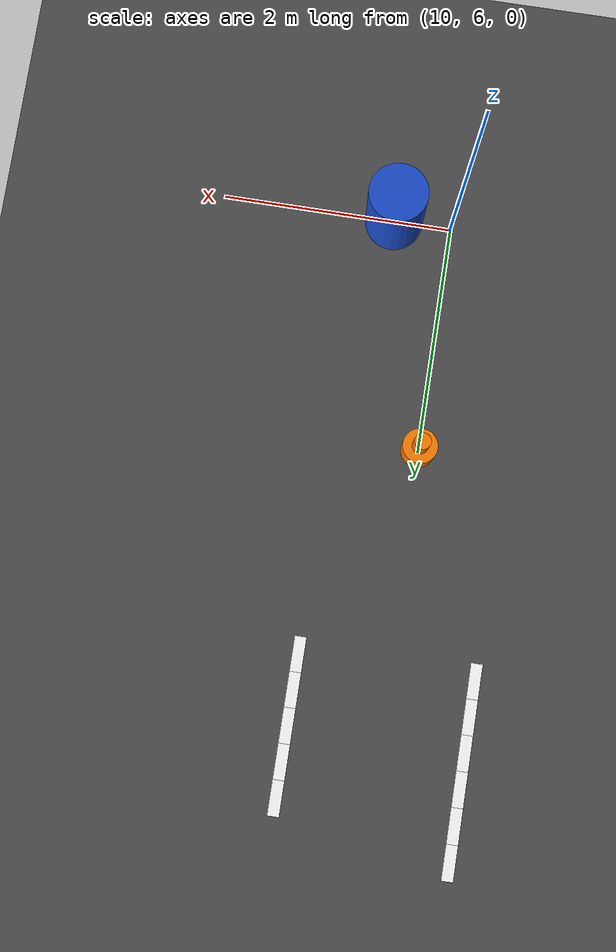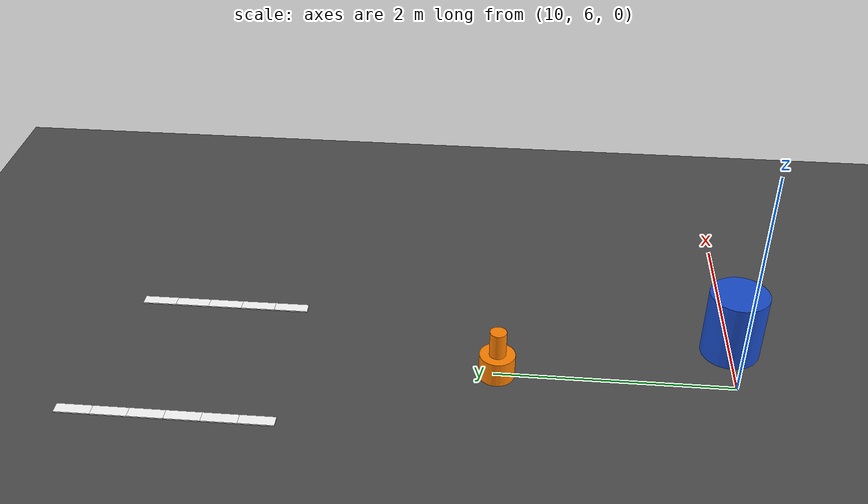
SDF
<sdf version="1.10">
 <world name="igvc_autonav">
  <model name="ground_plane">
   <static>true</static>
   <link name="link">
    <collision name="collision">
     <geometry><plane><normal>0 0 1</normal><size>60 60</size></plane></geometry>
     <surface><friction><ode><mu>0.80000000000000004</mu><mu2>0.80000000000000004</mu2></ode></friction></surface>
    </collision>
    <visual name="visual">
     <geometry><plane><normal>0 0 1</normal><size>60 60</size></plane></geometry>
     <material>
      <ambient>0.25 0.25 0.25 1</ambient>
      <diffuse>0.300000012 0.300000012 0.300000012 1</diffuse>
      <specular>0.100000001 0.100000001 0.100000001 1</specular>
     </material>
    </visual>
    <inertial>
     <mass>1</mass>
     <inertia><ixx>1</ixx><ixy>0</ixy><ixz>0</ixz><iyy>1</iyy><iyz>0</iyz><izz>1</izz></inertia>
    </inertial>
   </link>
  </model>
  <model name="lane_inner_43">
   <static>true</static>
   <pose>9.25 9.8499999999999996 0.01 0 0 1.5708</pose>
   <link name="link">
    <visual name="visual">
     <geometry><box><size>0.29999999999999999 0.10000000000000001 0.01</size></box></geometry>
     <material><ambient>1 1 1 1</ambient><diffuse>1 1 1 1</diffuse><emissive>1 1 1 1</emissive></material>
    </visual>
    <inertial>
     <mass>1</mass>
     <inertia><ixx>1</ixx><ixy>0</ixy><ixz>0</ixz><iyy>1</iyy><iyz>0</iyz><izz>1</izz></inertia>
    </inertial>
   </link>
  </model>
  <model name="lane_inner_44">
   <static>true</static>
   <pose>9.25 10.15 0.01 0 0 1.5708</pose>
   <link name="link">
    <visual name="visual">
     <geometry><box><size>0.29999999999999999 0.10000000000000001 0.01</size></box></geometry>
     <material><ambient>1 1 1 1</ambient><diffuse>1 1 1 1</diffuse><emissive>1 1 1 1</emissive></material>
    </visual>
    <inertial>
     <mass>1</mass>
     <inertia><ixx>1</ixx><ixy>0</ixy><ixz>0</ixz><iyy>1</iyy><iyz>0</iyz><izz>1</izz></inertia>
    </inertial>
   </link>
  </model>
  <model name="lane_inner_45">
   <static>true</static>
   <pose>9.25 10.449999999999999 0.01 0 0 1.5708</pose>
   <link name="link">
    <visual name="visual">
     <geometry><box><size>0.29999999999999999 0.10000000000000001 0.01</size></box></geometry>
     <material><ambient>1 1 1 1</ambient><diffuse>1 1 1 1</diffuse><emissive>1 1 1 1</emissive></material>
    </visual>
    <inertial>
     <mass>1</mass>
     <inertia><ixx>1</ixx><ixy>0</ixy><ixz>0</ixz><iyy>1</iyy><iyz>0</iyz><izz>1</izz></inertia>
    </inertial>
   </link>
  </model>
  <model name="lane_inner_46">
   <static>true</static>
   <pose>9.25 10.75 0.01 0 0 1.5708</pose>
   <link name="link">
    <visual name="visual">
     <geometry><box><size>0.29999999999999999 0.10000000000000001 0.01</size></box></geometry>
     <material><ambient>1 1 1 1</ambient><diffuse>1 1 1 1</diffuse><emissive>1 1 1 1</emissive></material>
    </visual>
    <inertial>
     <mass>1</mass>
     <inertia><ixx>1</ixx><ixy>0</ixy><ixz>0</ixz><iyy>1</iyy><iyz>0</iyz><izz>1</izz></inertia>
    </inertial>
   </link>
  </model>
  <model name="lane_inner_47">
   <static>true</static>
   <pose>9.25 11.050000000000001 0.01 0 0 1.5708</pose>
   <link name="link">
    <visual name="visual">
     <geometry><box><size>0.29999999999999999 0.10000000000000001 0.01</size></box></geometry>
     <material><ambient>1 1 1 1</ambient><diffuse>1 1 1 1</diffuse><emissive>1 1 1 1</emissive></material>
    </visual>
    <inertial>
     <mass>1</mass>
     <inertia><ixx>1</ixx><ixy>0</ixy><ixz>0</ixz><iyy>1</iyy><iyz>0</iyz><izz>1</izz></inertia>
    </inertial>
   </link>
  </model>
  <model name="lane_inner_48">
   <static>true</static>
   <pose>9.25 11.35 0.01 0 0 1.5708</pose>
   <link name="link">
    <visual name="visual">
     <geometry><box><size>0.29999999999999999 0.10000000000000001 0.01</size></box></geometry>
     <material><ambient>1 1 1 1</ambient><diffuse>1 1 1 1</diffuse><emissive>1 1 1 1</emissive></material>
    </visual>
    <inertial>
     <mass>1</mass>
     <inertia><ixx>1</ixx><ixy>0</ixy><ixz>0</ixz><iyy>1</iyy><iyz>0</iyz><izz>1</izz></inertia>
    </inertial>
   </link>
  </model>
  <model name="lane_outer_54">
   <static>true</static>
   <pose>10.75 9.8499999999999996 0.01 0 0 1.5708</pose>
   <link name="link">
    <visual name="visual">
     <geometry><box><size>0.29999999999999999 0.10000000000000001 0.01</size></box></geometry>
     <material><ambient>1 1 1 1</ambient><diffuse>1 1 1 1</diffuse><emissive>1 1 1 1</emissive></material>
    </visual>
    <inertial>
     <mass>1</mass>
     <inertia><ixx>1</ixx><ixy>0</ixy><ixz>0</ixz><iyy>1</iyy><iyz>0</iyz><izz>1</izz></inertia>
    </inertial>
   </link>
  </model>
  <model name="lane_outer_55">
   <static>true</static>
   <pose>10.75 10.15 0.01 0 0 1.5708</pose>
   <link name="link">
    <visual name="visual">
     <geometry><box><size>0.29999999999999999 0.10000000000000001 0.01</size></box></geometry>
     <material><ambient>1 1 1 1</ambient><diffuse>1 1 1 1</diffuse><emissive>1 1 1 1</emissive></material>
    </visual>
    <inertial>
     <mass>1</mass>
     <inertia><ixx>1</ixx><ixy>0</ixy><ixz>0</ixz><iyy>1</iyy><iyz>0</iyz><izz>1</izz></inertia>
    </inertial>
   </link>
  </model>
  <model name="lane_outer_56">
   <static>true</static>
   <pose>10.75 10.449999999999999 0.01 0 0 1.5708</pose>
   <link name="link">
    <visual name="visual">
     <geometry><box><size>0.29999999999999999 0.10000000000000001 0.01</size></box></geometry>
     <material><ambient>1 1 1 1</ambient><diffuse>1 1 1 1</diffuse><emissive>1 1 1 1</emissive></material>
    </visual>
    <inertial>
     <mass>1</mass>
     <inertia><ixx>1</ixx><ixy>0</ixy><ixz>0</ixz><iyy>1</iyy><iyz>0</iyz><izz>1</izz></inertia>
    </inertial>
   </link>
  </model>
  <model name="lane_outer_57">
   <static>true</static>
   <pose>10.75 10.75 0.01 0 0 1.5708</pose>
   <link name="link">
    <visual name="visual">
     <geometry><box><size>0.29999999999999999 0.10000000000000001 0.01</size></box></geometry>
     <material><ambient>1 1 1 1</ambient><diffuse>1 1 1 1</diffuse><emissive>1 1 1 1</emissive></material>
    </visual>
    <inertial>
     <mass>1</mass>
     <inertia><ixx>1</ixx><ixy>0</ixy><ixz>0</ixz><iyy>1</iyy><iyz>0</iyz><izz>1</izz></inertia>
    </inertial>
   </link>
  </model>
  <model name="lane_outer_58">
   <static>true</static>
   <pose>10.75 11.050000000000001 0.01 0 0 1.5708</pose>
   <link name="link">
    <visual name="visual">
     <geometry><box><size>0.29999999999999999 0.10000000000000001 0.01</size></box></geometry>
     <material><ambient>1 1 1 1</ambient><diffuse>1 1 1 1</diffuse><emissive>1 1 1 1</emissive></material>
    </visual>
    <inertial>
     <mass>1</mass>
     <inertia><ixx>1</ixx><ixy>0</ixy><ixz>0</ixz><iyy>1</iyy><iyz>0</iyz><izz>1</izz></inertia>
    </inertial>
   </link>
  </model>
  <model name="cone_1">
   <static>true</static>
   <link name="link">
    <collision name="collision_base">
     <geometry><cylinder><radius>0.14999999999999999</radius><length>0.22</length></cylinder></geometry>
     <pose>0 0 0.11 0 0 0</pose>
    </collision>
    <visual name="visual_base">
     <geometry><cylinder><radius>0.14999999999999999</radius><length>0.22</length></cylinder></geometry>
     <pose>0 0 0.11 0 0 0</pose>
     <material>
      <ambient>1 0.5 0 1</ambient>
      <diffuse>1 0.5 0 1</diffuse>
      <specular>0.300000012 0.300000012 0.300000012 1</specular>
     </material>
    </visual>
    <collision name="collision_top">
     <geometry>
      <cylinder><radius>0.070000000000000007</radius><length>0.23000000000000001</length></cylinder>
     </geometry>
     <pose>0 0 0.33500000000000002 0 0 0</pose>
    </collision>
    <visual name="visual_top">
     <geometry>
      <cylinder><radius>0.070000000000000007</radius><length>0.23000000000000001</length></cylinder>
     </geometry>
     <pose>0 0 0.33500000000000002 0 0 0</pose>
     <material>
      <ambient>1 0.5 0 1</ambient>
      <diffuse>1 0.5 0 1</diffuse>
      <specular>0.300000012 0.300000012 0.300000012 1</specular>
     </material>
    </visual>
    <inertial>
     <mass>1</mass>
     <inertia><ixx>1</ixx><ixy>0</ixy><ixz>0</ixz><iyy>1</iyy><iyz>0</iyz><izz>1</izz></inertia>
    </inertial>
   </link>
   <pose>10 7.9769399999999999 0 0 0 0</pose>
  </model>
  <model name="barrel_nml_1">
   <static>true</static>
   <link name="link">
    <collision name="collision">
     <geometry><cylinder><radius>0.25</radius><length>0.59999999999999998</length></cylinder></geometry>
     <pose>0 0 0.29999999999999999 0 0 0</pose>
    </collision>
    <visual name="visual">
     <geometry><cylinder><radius>0.25</radius><length>0.59999999999999998</length></cylinder></geometry>
     <pose>0 0 0.29999999999999999 0 0 0</pose>
     <material>
      <ambient>0.100000001 0.300000012 0.800000012 1</ambient>
      <diffuse>0.100000001 0.300000012 0.800000012 1</diffuse>
      <specular>0.300000012 0.300000012 0.300000012 1</specular>
     </material>
    </visual>
    <inertial>
     <mass>1</mass>
     <inertia><ixx>1</ixx><ixy>0</ixy><ixz>0</ixz><iyy>1</iyy><iyz>0</iyz><izz>1</izz></inertia>
    </inertial>
   </link>
   <pose>10.5 6 0 0 0 0</pose>
  </model>
 </world>
</sdf>
